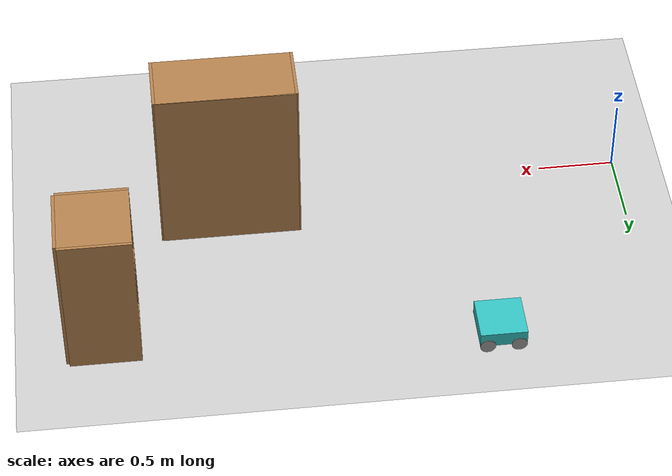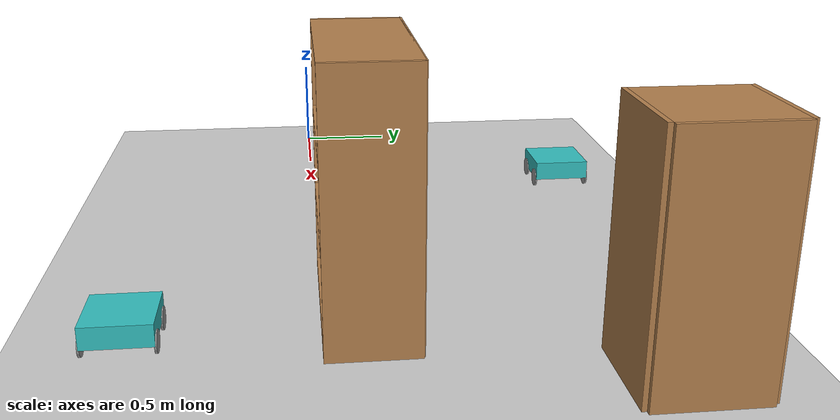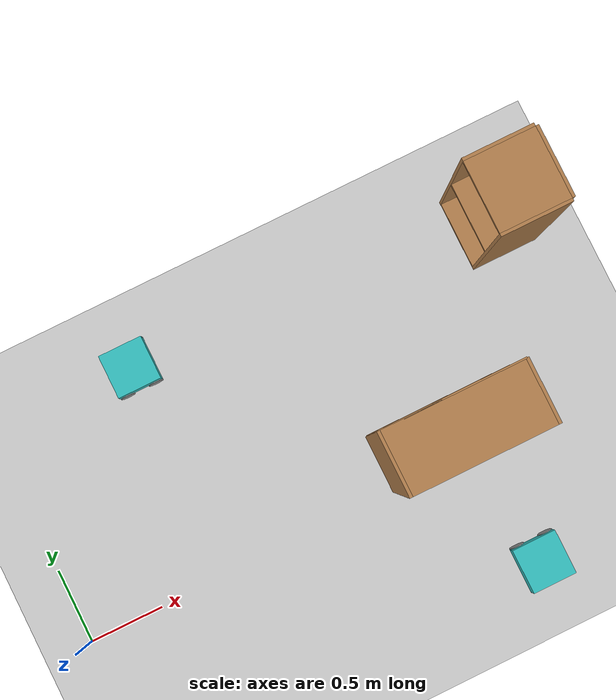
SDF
<sdf version="1.6">
 <world name="default">
  <model name="bookshelf">
   <static>1</static>
   <link name="link">
    <inertial><mass>1</mass></inertial>
    <collision name="back">
     <pose>0 0.005 0.6 0 -0 0</pose>
     <geometry><box><size>0.9 0.01 1.2</size></box></geometry>
    </collision>
    <visual name="visual1">
     <pose>0 0.005 0.6 0 -0 0</pose>
     <geometry><box><size>0.9 0.01 1.2</size></box></geometry>
     <material>
      <script><uri>file://media/materials/scripts/gazebo.material</uri><name>Gazebo/Wood</name></script>
     </material>
    </visual>
    <collision name="left_side">
     <pose>0.45 -0.195 0.6 0 -0 0</pose>
     <geometry><box><size>0.02 0.4 1.2</size></box></geometry>
    </collision>
    <visual name="visual2">
     <pose>0.45 -0.195 0.6 0 -0 0</pose>
     <geometry><box><size>0.02 0.4 1.2</size></box></geometry>
     <material>
      <script><uri>file://media/materials/scripts/gazebo.material</uri><name>Gazebo/Wood</name></script>
     </material>
    </visual>
    <collision name="right_side">
     <pose>-0.45 -0.195 0.6 0 -0 0</pose>
     <geometry><box><size>0.02 0.4 1.2</size></box></geometry>
    </collision>
    <visual name="visual3">
     <pose>-0.45 -0.195 0.6 0 -0 0</pose>
     <geometry><box><size>0.02 0.4 1.2</size></box></geometry>
     <material>
      <script><uri>file://media/materials/scripts/gazebo.material</uri><name>Gazebo/Wood</name></script>
     </material>
    </visual>
    <collision name="bottom">
     <pose>0 -0.195 0.03 0 -0 0</pose>
     <geometry><box><size>0.88 0.4 0.06</size></box></geometry>
    </collision>
    <visual name="visual4">
     <pose>0 -0.195 0.03 0 -0 0</pose>
     <geometry><box><size>0.88 0.4 0.06</size></box></geometry>
     <material>
      <script><uri>file://media/materials/scripts/gazebo.material</uri><name>Gazebo/Wood</name></script>
     </material>
    </visual>
    <collision name="top">
     <pose>0 -0.195 1.19 0 -0 0</pose>
     <geometry><box><size>0.88 0.4 0.02</size></box></geometry>
    </collision>
    <visual name="visual5">
     <pose>0 -0.195 1.19 0 -0 0</pose>
     <geometry><box><size>0.88 0.4 0.02</size></box></geometry>
     <material>
      <script><uri>file://media/materials/scripts/gazebo.material</uri><name>Gazebo/Wood</name></script>
     </material>
    </visual>
    <collision name="low_shelf">
     <pose>0 -0.195 0.43 0 -0 0</pose>
     <geometry><box><size>0.88 0.4 0.02</size></box></geometry>
    </collision>
    <visual name="visual6">
     <pose>0 -0.195 0.43 0 -0 0</pose>
     <geometry><box><size>0.88 0.4 0.02</size></box></geometry>
     <material>
      <script><uri>file://media/materials/scripts/gazebo.material</uri><name>Gazebo/Wood</name></script>
     </material>
    </visual>
    <collision name="high_shelf">
     <pose>0 -0.195 0.8 0 -0 0</pose>
     <geometry><box><size>0.88 0.4 0.02</size></box></geometry>
    </collision>
    <visual name="visual7">
     <pose>0 -0.195 0.8 0 -0 0</pose>
     <geometry><box><size>0.88 0.4 0.02</size></box></geometry>
     <material>
      <script><uri>file://media/materials/scripts/gazebo.material</uri><name>Gazebo/Wood</name></script>
     </material>
    </visual>
   </link>
   <pose>2.62048 0.395769 0 0 -0 0</pose>
  </model>
  <model name="cabinet">
   <static>1</static>
   <link name="cabinet_bottom_plate">
    <inertial>
     <pose>0 0 -1 0 -0 0</pose>
     <inertia><ixx>2.05</ixx><ixy>0</ixy><ixz>0</ixz><iyy>2.05</iyy><iyz>0</iyz><izz>2.05</izz></inertia>
     <mass>25</mass>
    </inertial>
    <collision name="cabinet_bottom_plate_geom">
     <pose>0 0 0.01 0 -0 0</pose>
     <geometry><box><size>0.45 0.45 0.02</size></box></geometry>
    </collision>
    <visual name="cabinet_bottom_plate_geom_visual">
     <pose>0 0 0.01 0 -0 0</pose>
     <geometry><box><size>0.45 0.45 0.02</size></box></geometry>
     <material>
      <script><uri>file://media/materials/scripts/gazebo.material</uri><name>Gazebo/Wood</name></script>
     </material>
    </visual>
    <collision name="cabinet_bottom_plate_geom_cabinet_back_plate">
     <pose>0.235 0 0.51 0 -0 0</pose>
     <geometry><box><size>0.02 0.45 1.02</size></box></geometry>
    </collision>
    <visual name="cabinet_bottom_plate_geom_cabinet_back_plate_visual">
     <pose>0.235 0 0.51 0 -0 0</pose>
     <geometry><box><size>0.02 0.45 1.02</size></box></geometry>
     <material>
      <script><uri>file://media/materials/scripts/gazebo.material</uri><name>Gazebo/Wood</name></script>
     </material>
    </visual>
    <collision name="cabinet_bottom_plate_geom_cabinet_left_plate">
     <pose>0 0.235 0.51 0 -0 0</pose>
     <geometry><box><size>0.45 0.02 1.02</size></box></geometry>
    </collision>
    <visual name="cabinet_bottom_plate_geom_cabinet_left_plate_visual">
     <pose>0 0.235 0.51 0 -0 0</pose>
     <geometry><box><size>0.45 0.02 1.02</size></box></geometry>
     <material>
      <script><uri>file://media/materials/scripts/gazebo.material</uri><name>Gazebo/Wood</name></script>
     </material>
    </visual>
    <collision name="cabinet_bottom_plate_geom_cabinet_middle_plate">
     <pose>0 0 0.51 0 -0 0</pose>
     <geometry><box><size>0.45 0.45 0.02</size></box></geometry>
    </collision>
    <visual name="cabinet_bottom_plate_geom_cabinet_middle_plate_visual">
     <pose>0 0 0.51 0 -0 0</pose>
     <geometry><box><size>0.45 0.45 0.02</size></box></geometry>
     <material>
      <script><uri>file://media/materials/scripts/gazebo.material</uri><name>Gazebo/Wood</name></script>
     </material>
    </visual>
    <collision name="cabinet_bottom_plate_geom_cabinet_right_plate">
     <pose>0 -0.235 0.51 0 -0 0</pose>
     <geometry><box><size>0.45 0.02 1.02</size></box></geometry>
    </collision>
    <visual name="cabinet_bottom_plate_geom_cabinet_right_plate_visual">
     <pose>0 -0.235 0.51 0 -0 0</pose>
     <geometry><box><size>0.45 0.02 1.02</size></box></geometry>
     <material>
      <script><uri>file://media/materials/scripts/gazebo.material</uri><name>Gazebo/Wood</name></script>
     </material>
    </visual>
    <collision name="cabinet_bottom_plate_geom_cabinet_top_plate">
     <pose>0 0 1.01 0 -0 0</pose>
     <geometry><box><size>0.45 0.45 0.02</size></box></geometry>
    </collision>
    <visual name="cabinet_bottom_plate_geom_cabinet_top_plate_visual">
     <pose>0 0 1.01 0 -0 0</pose>
     <geometry><box><size>0.45 0.45 0.02</size></box></geometry>
     <material>
      <script><uri>file://media/materials/scripts/gazebo.material</uri><name>Gazebo/Wood</name></script>
     </material>
    </visual>
   </link>
   <pose>3.48444 1.30317 0.109045 0 -0 0</pose>
  </model>
  <model name="ground_plane">
   <static>1</static>
   <link name="link">
    <collision name="collision">
     <geometry><plane><normal>0 0 1</normal><size>100 100</size></plane></geometry>
     <surface><friction><ode><mu>100</mu><mu2>50</mu2></ode></friction></surface>
    </collision>
    <visual name="visual">
     <cast_shadows>0</cast_shadows>
     <geometry><plane><normal>0 0 1</normal><size>100 100</size></plane></geometry>
     <material>
      <script><uri>file://media/materials/scripts/gazebo.material</uri><name>Gazebo/Grey</name></script>
     </material>
    </visual>
   </link>
   <pose>3.90103 8.06114 0 0 -0 0</pose>
  </model>
  <model name="mySquareBot">
   <link name="link_0">
    <pose>0 0 0.05 0 -0 0</pose>
    <inertial>
     <mass>1</mass>
     <inertia>
      <ixx>0.166667</ixx>
      <ixy>0</ixy>
      <ixz>0</ixz>
      <iyy>0.166667</iyy>
      <iyz>0</iyz>
      <izz>0.166667</izz>
     </inertia>
    </inertial>
    <visual name="visual">
     <pose>0 0 0.05 0 -0 0</pose>
     <geometry><box><size>0.3 0.3 0.1</size></box></geometry>
     <material>
      <lighting>1</lighting>
      <script><uri>file://media/materials/scripts/gazebo.material</uri><name>Gazebo/Turquoise</name></script>
      <ambient>0.3 0.3 0.3 1</ambient>
      <diffuse>0.7 0.7 0.7 1</diffuse>
      <specular>0.01 0.01 0.01 1</specular>
      <emissive>0 0 0 1</emissive>
      <shader type="vertex"><normal_map>__default__</normal_map></shader>
     </material>
    </visual>
    <collision name="collision">
     <pose>0 0 0.05 0 -0 0</pose>
     <geometry><box><size>0.3 0.3 0.1</size></box></geometry>
     <surface>
      <friction>
       <ode><mu>1</mu><mu2>1</mu2><fdir1>0 0 0</fdir1><slip1>0</slip1><slip2>0</slip2></ode>
       <torsional>
        <coefficient>1</coefficient>
        <patch_radius>0</patch_radius>
        <surface_radius>0</surface_radius>
        <use_patch_radius>1</use_patch_radius>
        <ode><slip>0</slip></ode>
       </torsional>
      </friction>
      <bounce><restitution_coefficient>0</restitution_coefficient><threshold>1e+06</threshold></bounce>
      <contact>
       <collide_without_contact>0</collide_without_contact>
       <collide_without_contact_bitmask>1</collide_without_contact_bitmask>
       <collide_bitmask>1</collide_bitmask>
       <ode>
        <soft_cfm>0</soft_cfm>
        <soft_erp>0.2</soft_erp>
        <kp>1e+13</kp>
        <kd>1</kd>
        <max_vel>0.01</max_vel>
        <min_depth>0</min_depth>
       </ode>
       <bullet>
        <split_impulse>1</split_impulse>
        <split_impulse_penetration_threshold>-0.01</split_impulse_penetration_threshold>
        <soft_cfm>0</soft_cfm>
        <soft_erp>0.2</soft_erp>
        <kp>1e+13</kp>
        <kd>1</kd>
       </bullet>
      </contact>
     </surface>
    </collision>
   </link>
   <link name="link_2">
    <pose>-0.1 -0.15 0.05 -0.000306 1.5707 1.5711</pose>
    <inertial>
     <mass>1</mass>
     <inertia><ixx>0.145833</ixx><ixy>0</ixy><ixz>0</ixz><iyy>0.145833</iyy><iyz>0</iyz><izz>0.125</izz></inertia>
    </inertial>
    <visual name="visual">
     <geometry><cylinder><radius>0.05</radius><length>0.01</length></cylinder></geometry>
     <material>
      <lighting>1</lighting>
      <script><uri>file://media/materials/scripts/gazebo.material</uri><name>Gazebo/Grey</name></script>
      <ambient>0.3 0.3 0.3 1</ambient>
      <diffuse>0.7 0.7 0.7 1</diffuse>
      <specular>0.01 0.01 0.01 1</specular>
      <emissive>0 0 0 1</emissive>
      <shader type="vertex"><normal_map>__default__</normal_map></shader>
     </material>
    </visual>
    <collision name="collision">
     <geometry><cylinder><radius>0.05</radius><length>0.01</length></cylinder></geometry>
     <surface>
      <friction>
       <ode><mu>1</mu><mu2>1</mu2><fdir1>0 0 0</fdir1><slip1>0</slip1><slip2>0</slip2></ode>
       <torsional>
        <coefficient>1</coefficient>
        <patch_radius>0</patch_radius>
        <surface_radius>0</surface_radius>
        <use_patch_radius>1</use_patch_radius>
        <ode><slip>0</slip></ode>
       </torsional>
      </friction>
      <bounce><restitution_coefficient>0</restitution_coefficient><threshold>1e+06</threshold></bounce>
      <contact>
       <collide_without_contact>0</collide_without_contact>
       <collide_without_contact_bitmask>1</collide_without_contact_bitmask>
       <collide_bitmask>1</collide_bitmask>
       <ode>
        <soft_cfm>0</soft_cfm>
        <soft_erp>0.2</soft_erp>
        <kp>1e+13</kp>
        <kd>1</kd>
        <max_vel>0.01</max_vel>
        <min_depth>0</min_depth>
       </ode>
       <bullet>
        <split_impulse>1</split_impulse>
        <split_impulse_penetration_threshold>-0.01</split_impulse_penetration_threshold>
        <soft_cfm>0</soft_cfm>
        <soft_erp>0.2</soft_erp>
        <kp>1e+13</kp>
        <kd>1</kd>
       </bullet>
      </contact>
     </surface>
    </collision>
   </link>
   <link name="link_2_clone">
    <pose>-0.1 0.15 0.05 0.000955 1.5707 1.57108</pose>
    <inertial>
     <mass>1</mass>
     <inertia><ixx>0.145833</ixx><ixy>0</ixy><ixz>0</ixz><iyy>0.145833</iyy><iyz>0</iyz><izz>0.125</izz></inertia>
    </inertial>
    <visual name="visual">
     <geometry><cylinder><radius>0.05</radius><length>0.01</length></cylinder></geometry>
     <material>
      <lighting>1</lighting>
      <script><uri>file://media/materials/scripts/gazebo.material</uri><name>Gazebo/Grey</name></script>
      <ambient>0.3 0.3 0.3 1</ambient>
      <diffuse>0.7 0.7 0.7 1</diffuse>
      <specular>0.01 0.01 0.01 1</specular>
      <emissive>0 0 0 1</emissive>
      <shader type="vertex"><normal_map>__default__</normal_map></shader>
     </material>
    </visual>
    <collision name="collision">
     <geometry><cylinder><radius>0.05</radius><length>0.01</length></cylinder></geometry>
     <surface>
      <friction>
       <ode><mu>1</mu><mu2>1</mu2><fdir1>0 0 0</fdir1><slip1>0</slip1><slip2>0</slip2></ode>
       <torsional>
        <coefficient>1</coefficient>
        <patch_radius>0</patch_radius>
        <surface_radius>0</surface_radius>
        <use_patch_radius>1</use_patch_radius>
        <ode><slip>0</slip></ode>
       </torsional>
      </friction>
      <bounce><restitution_coefficient>0</restitution_coefficient><threshold>1e+06</threshold></bounce>
      <contact>
       <collide_without_contact>0</collide_without_contact>
       <collide_without_contact_bitmask>1</collide_without_contact_bitmask>
       <collide_bitmask>1</collide_bitmask>
       <ode>
        <soft_cfm>0</soft_cfm>
        <soft_erp>0.2</soft_erp>
        <kp>1e+13</kp>
        <kd>1</kd>
        <max_vel>0.01</max_vel>
        <min_depth>0</min_depth>
       </ode>
       <bullet>
        <split_impulse>1</split_impulse>
        <split_impulse_penetration_threshold>-0.01</split_impulse_penetration_threshold>
        <soft_cfm>0</soft_cfm>
        <soft_erp>0.2</soft_erp>
        <kp>1e+13</kp>
        <kd>1</kd>
       </bullet>
      </contact>
     </surface>
    </collision>
   </link>
   <link name="link_2_clone_0">
    <pose>0.1 -0.15 0.05 0.000955 1.5707 1.57108</pose>
    <inertial>
     <mass>1</mass>
     <inertia><ixx>0.145833</ixx><ixy>0</ixy><ixz>0</ixz><iyy>0.145833</iyy><iyz>0</iyz><izz>0.125</izz></inertia>
    </inertial>
    <visual name="visual">
     <geometry><cylinder><radius>0.05</radius><length>0.01</length></cylinder></geometry>
     <material>
      <lighting>1</lighting>
      <script><uri>file://media/materials/scripts/gazebo.material</uri><name>Gazebo/Grey</name></script>
      <ambient>0.3 0.3 0.3 1</ambient>
      <diffuse>0.7 0.7 0.7 1</diffuse>
      <specular>0.01 0.01 0.01 1</specular>
      <emissive>0 0 0 1</emissive>
      <shader type="vertex"><normal_map>__default__</normal_map></shader>
     </material>
    </visual>
    <collision name="collision">
     <geometry><cylinder><radius>0.05</radius><length>0.01</length></cylinder></geometry>
     <surface>
      <friction>
       <ode><mu>1</mu><mu2>1</mu2><fdir1>0 0 0</fdir1><slip1>0</slip1><slip2>0</slip2></ode>
       <torsional>
        <coefficient>1</coefficient>
        <patch_radius>0</patch_radius>
        <surface_radius>0</surface_radius>
        <use_patch_radius>1</use_patch_radius>
        <ode><slip>0</slip></ode>
       </torsional>
      </friction>
      <bounce><restitution_coefficient>0</restitution_coefficient><threshold>1e+06</threshold></bounce>
      <contact>
       <collide_without_contact>0</collide_without_contact>
       <collide_without_contact_bitmask>1</collide_without_contact_bitmask>
       <collide_bitmask>1</collide_bitmask>
       <ode>
        <soft_cfm>0</soft_cfm>
        <soft_erp>0.2</soft_erp>
        <kp>1e+13</kp>
        <kd>1</kd>
        <max_vel>0.01</max_vel>
        <min_depth>0</min_depth>
       </ode>
       <bullet>
        <split_impulse>1</split_impulse>
        <split_impulse_penetration_threshold>-0.01</split_impulse_penetration_threshold>
        <soft_cfm>0</soft_cfm>
        <soft_erp>0.2</soft_erp>
        <kp>1e+13</kp>
        <kd>1</kd>
       </bullet>
      </contact>
     </surface>
    </collision>
   </link>
   <link name="link_2_clone_1">
    <pose>0.1 0.15 0.05 0.000955 1.5707 1.57108</pose>
    <inertial>
     <mass>1</mass>
     <inertia><ixx>0.145833</ixx><ixy>0</ixy><ixz>0</ixz><iyy>0.145833</iyy><iyz>0</iyz><izz>0.125</izz></inertia>
    </inertial>
    <visual name="visual">
     <geometry><cylinder><radius>0.05</radius><length>0.01</length></cylinder></geometry>
     <material>
      <lighting>1</lighting>
      <script><uri>file://media/materials/scripts/gazebo.material</uri><name>Gazebo/Grey</name></script>
      <ambient>0.3 0.3 0.3 1</ambient>
      <diffuse>0.7 0.7 0.7 1</diffuse>
      <specular>0.01 0.01 0.01 1</specular>
      <emissive>0 0 0 1</emissive>
      <shader type="vertex"><normal_map>__default__</normal_map></shader>
     </material>
    </visual>
    <collision name="collision">
     <geometry><cylinder><radius>0.05</radius><length>0.01</length></cylinder></geometry>
     <surface>
      <friction>
       <ode><mu>1</mu><mu2>1</mu2><fdir1>0 0 0</fdir1><slip1>0</slip1><slip2>0</slip2></ode>
       <torsional>
        <coefficient>1</coefficient>
        <patch_radius>0</patch_radius>
        <surface_radius>0</surface_radius>
        <use_patch_radius>1</use_patch_radius>
        <ode><slip>0</slip></ode>
       </torsional>
      </friction>
      <bounce><restitution_coefficient>0</restitution_coefficient><threshold>1e+06</threshold></bounce>
      <contact>
       <collide_without_contact>0</collide_without_contact>
       <collide_without_contact_bitmask>1</collide_without_contact_bitmask>
       <collide_bitmask>1</collide_bitmask>
       <ode>
        <soft_cfm>0</soft_cfm>
        <soft_erp>0.2</soft_erp>
        <kp>1e+13</kp>
        <kd>1</kd>
        <max_vel>0.01</max_vel>
        <min_depth>0</min_depth>
       </ode>
       <bullet>
        <split_impulse>1</split_impulse>
        <split_impulse_penetration_threshold>-0.01</split_impulse_penetration_threshold>
        <soft_cfm>0</soft_cfm>
        <soft_erp>0.2</soft_erp>
        <kp>1e+13</kp>
        <kd>1</kd>
       </bullet>
      </contact>
     </surface>
    </collision>
   </link>
   <joint name="link_0_JOINT_5" type="revolute">
    <parent>link_0</parent>
    <child>link_2</child>
    <pose>0 0 0.025 0 -0 0</pose>
    <axis>
     <xyz>0 1 0</xyz>
     <use_parent_model_frame>0</use_parent_model_frame>
     <limit>
      <lower>-1.79769e+308</lower>
      <upper>1.79769e+308</upper>
      <effort>-1</effort>
      <velocity>-1</velocity>
     </limit>
     <dynamics>
      <spring_reference>0</spring_reference>
      <spring_stiffness>0</spring_stiffness>
      <damping>0</damping>
      <friction>0</friction>
     </dynamics>
    </axis>
    <physics>
     <ode><limit><cfm>0</cfm><erp>0.2</erp></limit><suspension><cfm>0</cfm><erp>0.2</erp></suspension></ode>
    </physics>
   </joint>
   <joint name="link_0_JOINT_6" type="revolute">
    <parent>link_0</parent>
    <child>link_2_clone</child>
    <axis>
     <xyz>0 1 0</xyz>
     <use_parent_model_frame>0</use_parent_model_frame>
     <limit>
      <lower>-1.79769e+308</lower>
      <upper>1.79769e+308</upper>
      <effort>-1</effort>
      <velocity>-1</velocity>
     </limit>
     <dynamics>
      <spring_reference>0</spring_reference>
      <spring_stiffness>0</spring_stiffness>
      <damping>0</damping>
      <friction>0</friction>
     </dynamics>
    </axis>
    <physics>
     <ode><limit><cfm>0</cfm><erp>0.2</erp></limit><suspension><cfm>0</cfm><erp>0.2</erp></suspension></ode>
    </physics>
   </joint>
   <joint name="link_0_JOINT_7" type="revolute">
    <parent>link_0</parent>
    <child>link_2_clone_0</child>
    <axis>
     <xyz>0 1 0</xyz>
     <use_parent_model_frame>0</use_parent_model_frame>
     <limit>
      <lower>-1.79769e+308</lower>
      <upper>1.79769e+308</upper>
      <effort>-1</effort>
      <velocity>-1</velocity>
     </limit>
     <dynamics>
      <spring_reference>0</spring_reference>
      <spring_stiffness>0</spring_stiffness>
      <damping>0</damping>
      <friction>0</friction>
     </dynamics>
    </axis>
    <physics>
     <ode><limit><cfm>0</cfm><erp>0.2</erp></limit><suspension><cfm>0</cfm><erp>0.2</erp></suspension></ode>
    </physics>
   </joint>
   <joint name="link_0_JOINT_8" type="revolute">
    <parent>link_0</parent>
    <child>link_2_clone_1</child>
    <axis>
     <xyz>0 1 0</xyz>
     <use_parent_model_frame>0</use_parent_model_frame>
     <limit>
      <lower>-1.79769e+308</lower>
      <upper>1.79769e+308</upper>
      <effort>-1</effort>
      <velocity>-1</velocity>
     </limit>
     <dynamics>
      <spring_reference>0</spring_reference>
      <spring_stiffness>0</spring_stiffness>
      <damping>0</damping>
      <friction>0</friction>
     </dynamics>
    </axis>
    <physics>
     <ode><limit><cfm>0</cfm><erp>0.2</erp></limit><suspension><cfm>0</cfm><erp>0.2</erp></suspension></ode>
    </physics>
   </joint>
   <static>0</static>
   <pose>2.8157 -0.807264 0 0 -0 0</pose>
  </model>
  <model name="mySquareBot_0">
   <link name="link_0">
    <pose>0 0 0.05 0 -0 0</pose>
    <inertial>
     <mass>1</mass>
     <inertia>
      <ixx>0.166667</ixx>
      <ixy>0</ixy>
      <ixz>0</ixz>
      <iyy>0.166667</iyy>
      <iyz>0</iyz>
      <izz>0.166667</izz>
     </inertia>
    </inertial>
    <visual name="visual">
     <pose>0 0 0.05 0 -0 0</pose>
     <geometry><box><size>0.3 0.3 0.1</size></box></geometry>
     <material>
      <lighting>1</lighting>
      <script><uri>file://media/materials/scripts/gazebo.material</uri><name>Gazebo/Turquoise</name></script>
      <ambient>0.3 0.3 0.3 1</ambient>
      <diffuse>0.7 0.7 0.7 1</diffuse>
      <specular>0.01 0.01 0.01 1</specular>
      <emissive>0 0 0 1</emissive>
      <shader type="vertex"><normal_map>__default__</normal_map></shader>
     </material>
    </visual>
    <collision name="collision">
     <pose>0 0 0.05 0 -0 0</pose>
     <geometry><box><size>0.3 0.3 0.1</size></box></geometry>
     <surface>
      <friction>
       <ode><mu>1</mu><mu2>1</mu2><fdir1>0 0 0</fdir1><slip1>0</slip1><slip2>0</slip2></ode>
       <torsional>
        <coefficient>1</coefficient>
        <patch_radius>0</patch_radius>
        <surface_radius>0</surface_radius>
        <use_patch_radius>1</use_patch_radius>
        <ode><slip>0</slip></ode>
       </torsional>
      </friction>
      <bounce><restitution_coefficient>0</restitution_coefficient><threshold>1e+06</threshold></bounce>
      <contact>
       <collide_without_contact>0</collide_without_contact>
       <collide_without_contact_bitmask>1</collide_without_contact_bitmask>
       <collide_bitmask>1</collide_bitmask>
       <ode>
        <soft_cfm>0</soft_cfm>
        <soft_erp>0.2</soft_erp>
        <kp>1e+13</kp>
        <kd>1</kd>
        <max_vel>0.01</max_vel>
        <min_depth>0</min_depth>
       </ode>
       <bullet>
        <split_impulse>1</split_impulse>
        <split_impulse_penetration_threshold>-0.01</split_impulse_penetration_threshold>
        <soft_cfm>0</soft_cfm>
        <soft_erp>0.2</soft_erp>
        <kp>1e+13</kp>
        <kd>1</kd>
       </bullet>
      </contact>
     </surface>
    </collision>
   </link>
   <link name="link_2">
    <pose>-0.1 -0.15 0.05 -0.000306 1.5707 1.5711</pose>
    <inertial>
     <mass>1</mass>
     <inertia><ixx>0.145833</ixx><ixy>0</ixy><ixz>0</ixz><iyy>0.145833</iyy><iyz>0</iyz><izz>0.125</izz></inertia>
    </inertial>
    <visual name="visual">
     <geometry><cylinder><radius>0.05</radius><length>0.01</length></cylinder></geometry>
     <material>
      <lighting>1</lighting>
      <script><uri>file://media/materials/scripts/gazebo.material</uri><name>Gazebo/Grey</name></script>
      <ambient>0.3 0.3 0.3 1</ambient>
      <diffuse>0.7 0.7 0.7 1</diffuse>
      <specular>0.01 0.01 0.01 1</specular>
      <emissive>0 0 0 1</emissive>
      <shader type="vertex"><normal_map>__default__</normal_map></shader>
     </material>
    </visual>
    <collision name="collision">
     <geometry><cylinder><radius>0.05</radius><length>0.01</length></cylinder></geometry>
     <surface>
      <friction>
       <ode><mu>1</mu><mu2>1</mu2><fdir1>0 0 0</fdir1><slip1>0</slip1><slip2>0</slip2></ode>
       <torsional>
        <coefficient>1</coefficient>
        <patch_radius>0</patch_radius>
        <surface_radius>0</surface_radius>
        <use_patch_radius>1</use_patch_radius>
        <ode><slip>0</slip></ode>
       </torsional>
      </friction>
      <bounce><restitution_coefficient>0</restitution_coefficient><threshold>1e+06</threshold></bounce>
      <contact>
       <collide_without_contact>0</collide_without_contact>
       <collide_without_contact_bitmask>1</collide_without_contact_bitmask>
       <collide_bitmask>1</collide_bitmask>
       <ode>
        <soft_cfm>0</soft_cfm>
        <soft_erp>0.2</soft_erp>
        <kp>1e+13</kp>
        <kd>1</kd>
        <max_vel>0.01</max_vel>
        <min_depth>0</min_depth>
       </ode>
       <bullet>
        <split_impulse>1</split_impulse>
        <split_impulse_penetration_threshold>-0.01</split_impulse_penetration_threshold>
        <soft_cfm>0</soft_cfm>
        <soft_erp>0.2</soft_erp>
        <kp>1e+13</kp>
        <kd>1</kd>
       </bullet>
      </contact>
     </surface>
    </collision>
   </link>
   <link name="link_2_clone">
    <pose>-0.1 0.15 0.05 0.000955 1.5707 1.57108</pose>
    <inertial>
     <mass>1</mass>
     <inertia><ixx>0.145833</ixx><ixy>0</ixy><ixz>0</ixz><iyy>0.145833</iyy><iyz>0</iyz><izz>0.125</izz></inertia>
    </inertial>
    <visual name="visual">
     <geometry><cylinder><radius>0.05</radius><length>0.01</length></cylinder></geometry>
     <material>
      <lighting>1</lighting>
      <script><uri>file://media/materials/scripts/gazebo.material</uri><name>Gazebo/Grey</name></script>
      <ambient>0.3 0.3 0.3 1</ambient>
      <diffuse>0.7 0.7 0.7 1</diffuse>
      <specular>0.01 0.01 0.01 1</specular>
      <emissive>0 0 0 1</emissive>
      <shader type="vertex"><normal_map>__default__</normal_map></shader>
     </material>
    </visual>
    <collision name="collision">
     <geometry><cylinder><radius>0.05</radius><length>0.01</length></cylinder></geometry>
     <surface>
      <friction>
       <ode><mu>1</mu><mu2>1</mu2><fdir1>0 0 0</fdir1><slip1>0</slip1><slip2>0</slip2></ode>
       <torsional>
        <coefficient>1</coefficient>
        <patch_radius>0</patch_radius>
        <surface_radius>0</surface_radius>
        <use_patch_radius>1</use_patch_radius>
        <ode><slip>0</slip></ode>
       </torsional>
      </friction>
      <bounce><restitution_coefficient>0</restitution_coefficient><threshold>1e+06</threshold></bounce>
      <contact>
       <collide_without_contact>0</collide_without_contact>
       <collide_without_contact_bitmask>1</collide_without_contact_bitmask>
       <collide_bitmask>1</collide_bitmask>
       <ode>
        <soft_cfm>0</soft_cfm>
        <soft_erp>0.2</soft_erp>
        <kp>1e+13</kp>
        <kd>1</kd>
        <max_vel>0.01</max_vel>
        <min_depth>0</min_depth>
       </ode>
       <bullet>
        <split_impulse>1</split_impulse>
        <split_impulse_penetration_threshold>-0.01</split_impulse_penetration_threshold>
        <soft_cfm>0</soft_cfm>
        <soft_erp>0.2</soft_erp>
        <kp>1e+13</kp>
        <kd>1</kd>
       </bullet>
      </contact>
     </surface>
    </collision>
   </link>
   <link name="link_2_clone_0">
    <pose>0.1 -0.15 0.05 0.000955 1.5707 1.57108</pose>
    <inertial>
     <mass>1</mass>
     <inertia><ixx>0.145833</ixx><ixy>0</ixy><ixz>0</ixz><iyy>0.145833</iyy><iyz>0</iyz><izz>0.125</izz></inertia>
    </inertial>
    <visual name="visual">
     <geometry><cylinder><radius>0.05</radius><length>0.01</length></cylinder></geometry>
     <material>
      <lighting>1</lighting>
      <script><uri>file://media/materials/scripts/gazebo.material</uri><name>Gazebo/Grey</name></script>
      <ambient>0.3 0.3 0.3 1</ambient>
      <diffuse>0.7 0.7 0.7 1</diffuse>
      <specular>0.01 0.01 0.01 1</specular>
      <emissive>0 0 0 1</emissive>
      <shader type="vertex"><normal_map>__default__</normal_map></shader>
     </material>
    </visual>
    <collision name="collision">
     <geometry><cylinder><radius>0.05</radius><length>0.01</length></cylinder></geometry>
     <surface>
      <friction>
       <ode><mu>1</mu><mu2>1</mu2><fdir1>0 0 0</fdir1><slip1>0</slip1><slip2>0</slip2></ode>
       <torsional>
        <coefficient>1</coefficient>
        <patch_radius>0</patch_radius>
        <surface_radius>0</surface_radius>
        <use_patch_radius>1</use_patch_radius>
        <ode><slip>0</slip></ode>
       </torsional>
      </friction>
      <bounce><restitution_coefficient>0</restitution_coefficient><threshold>1e+06</threshold></bounce>
      <contact>
       <collide_without_contact>0</collide_without_contact>
       <collide_without_contact_bitmask>1</collide_without_contact_bitmask>
       <collide_bitmask>1</collide_bitmask>
       <ode>
        <soft_cfm>0</soft_cfm>
        <soft_erp>0.2</soft_erp>
        <kp>1e+13</kp>
        <kd>1</kd>
        <max_vel>0.01</max_vel>
        <min_depth>0</min_depth>
       </ode>
       <bullet>
        <split_impulse>1</split_impulse>
        <split_impulse_penetration_threshold>-0.01</split_impulse_penetration_threshold>
        <soft_cfm>0</soft_cfm>
        <soft_erp>0.2</soft_erp>
        <kp>1e+13</kp>
        <kd>1</kd>
       </bullet>
      </contact>
     </surface>
    </collision>
   </link>
   <link name="link_2_clone_1">
    <pose>0.1 0.15 0.05 0.000955 1.5707 1.57108</pose>
    <inertial>
     <mass>1</mass>
     <inertia><ixx>0.145833</ixx><ixy>0</ixy><ixz>0</ixz><iyy>0.145833</iyy><iyz>0</iyz><izz>0.125</izz></inertia>
    </inertial>
    <visual name="visual">
     <geometry><cylinder><radius>0.05</radius><length>0.01</length></cylinder></geometry>
     <material>
      <lighting>1</lighting>
      <script><uri>file://media/materials/scripts/gazebo.material</uri><name>Gazebo/Grey</name></script>
      <ambient>0.3 0.3 0.3 1</ambient>
      <diffuse>0.7 0.7 0.7 1</diffuse>
      <specular>0.01 0.01 0.01 1</specular>
      <emissive>0 0 0 1</emissive>
      <shader type="vertex"><normal_map>__default__</normal_map></shader>
     </material>
    </visual>
    <collision name="collision">
     <geometry><cylinder><radius>0.05</radius><length>0.01</length></cylinder></geometry>
     <surface>
      <friction>
       <ode><mu>1</mu><mu2>1</mu2><fdir1>0 0 0</fdir1><slip1>0</slip1><slip2>0</slip2></ode>
       <torsional>
        <coefficient>1</coefficient>
        <patch_radius>0</patch_radius>
        <surface_radius>0</surface_radius>
        <use_patch_radius>1</use_patch_radius>
        <ode><slip>0</slip></ode>
       </torsional>
      </friction>
      <bounce><restitution_coefficient>0</restitution_coefficient><threshold>1e+06</threshold></bounce>
      <contact>
       <collide_without_contact>0</collide_without_contact>
       <collide_without_contact_bitmask>1</collide_without_contact_bitmask>
       <collide_bitmask>1</collide_bitmask>
       <ode>
        <soft_cfm>0</soft_cfm>
        <soft_erp>0.2</soft_erp>
        <kp>1e+13</kp>
        <kd>1</kd>
        <max_vel>0.01</max_vel>
        <min_depth>0</min_depth>
       </ode>
       <bullet>
        <split_impulse>1</split_impulse>
        <split_impulse_penetration_threshold>-0.01</split_impulse_penetration_threshold>
        <soft_cfm>0</soft_cfm>
        <soft_erp>0.2</soft_erp>
        <kp>1e+13</kp>
        <kd>1</kd>
       </bullet>
      </contact>
     </surface>
    </collision>
   </link>
   <joint name="link_0_JOINT_5" type="revolute">
    <parent>link_0</parent>
    <child>link_2</child>
    <pose>0 0 0.025 0 -0 0</pose>
    <axis>
     <xyz>0 1 0</xyz>
     <use_parent_model_frame>0</use_parent_model_frame>
     <limit>
      <lower>-1.79769e+308</lower>
      <upper>1.79769e+308</upper>
      <effort>-1</effort>
      <velocity>-1</velocity>
     </limit>
     <dynamics>
      <spring_reference>0</spring_reference>
      <spring_stiffness>0</spring_stiffness>
      <damping>0</damping>
      <friction>0</friction>
     </dynamics>
    </axis>
    <physics>
     <ode><limit><cfm>0</cfm><erp>0.2</erp></limit><suspension><cfm>0</cfm><erp>0.2</erp></suspension></ode>
    </physics>
   </joint>
   <joint name="link_0_JOINT_6" type="revolute">
    <parent>link_0</parent>
    <child>link_2_clone</child>
    <axis>
     <xyz>0 1 0</xyz>
     <use_parent_model_frame>0</use_parent_model_frame>
     <limit>
      <lower>-1.79769e+308</lower>
      <upper>1.79769e+308</upper>
      <effort>-1</effort>
      <velocity>-1</velocity>
     </limit>
     <dynamics>
      <spring_reference>0</spring_reference>
      <spring_stiffness>0</spring_stiffness>
      <damping>0</damping>
      <friction>0</friction>
     </dynamics>
    </axis>
    <physics>
     <ode><limit><cfm>0</cfm><erp>0.2</erp></limit><suspension><cfm>0</cfm><erp>0.2</erp></suspension></ode>
    </physics>
   </joint>
   <joint name="link_0_JOINT_7" type="revolute">
    <parent>link_0</parent>
    <child>link_2_clone_0</child>
    <axis>
     <xyz>0 1 0</xyz>
     <use_parent_model_frame>0</use_parent_model_frame>
     <limit>
      <lower>-1.79769e+308</lower>
      <upper>1.79769e+308</upper>
      <effort>-1</effort>
      <velocity>-1</velocity>
     </limit>
     <dynamics>
      <spring_reference>0</spring_reference>
      <spring_stiffness>0</spring_stiffness>
      <damping>0</damping>
      <friction>0</friction>
     </dynamics>
    </axis>
    <physics>
     <ode><limit><cfm>0</cfm><erp>0.2</erp></limit><suspension><cfm>0</cfm><erp>0.2</erp></suspension></ode>
    </physics>
   </joint>
   <joint name="link_0_JOINT_8" type="revolute">
    <parent>link_0</parent>
    <child>link_2_clone_1</child>
    <axis>
     <xyz>0 1 0</xyz>
     <use_parent_model_frame>0</use_parent_model_frame>
     <limit>
      <lower>-1.79769e+308</lower>
      <upper>1.79769e+308</upper>
      <effort>-1</effort>
      <velocity>-1</velocity>
     </limit>
     <dynamics>
      <spring_reference>0</spring_reference>
      <spring_stiffness>0</spring_stiffness>
      <damping>0</damping>
      <friction>0</friction>
     </dynamics>
    </axis>
    <physics>
     <ode><limit><cfm>0</cfm><erp>0.2</erp></limit><suspension><cfm>0</cfm><erp>0.2</erp></suspension></ode>
    </physics>
   </joint>
   <static>0</static>
   <pose>1 1.466 0 0 -0 0</pose>
  </model>
 </world>
</sdf>
